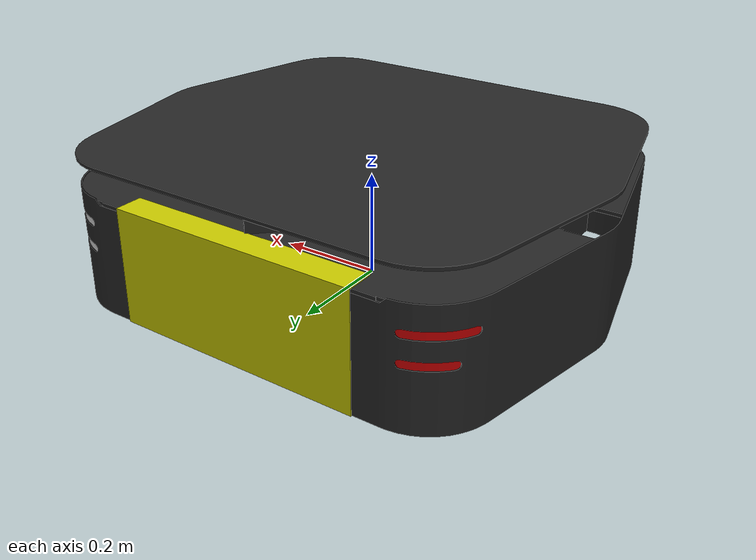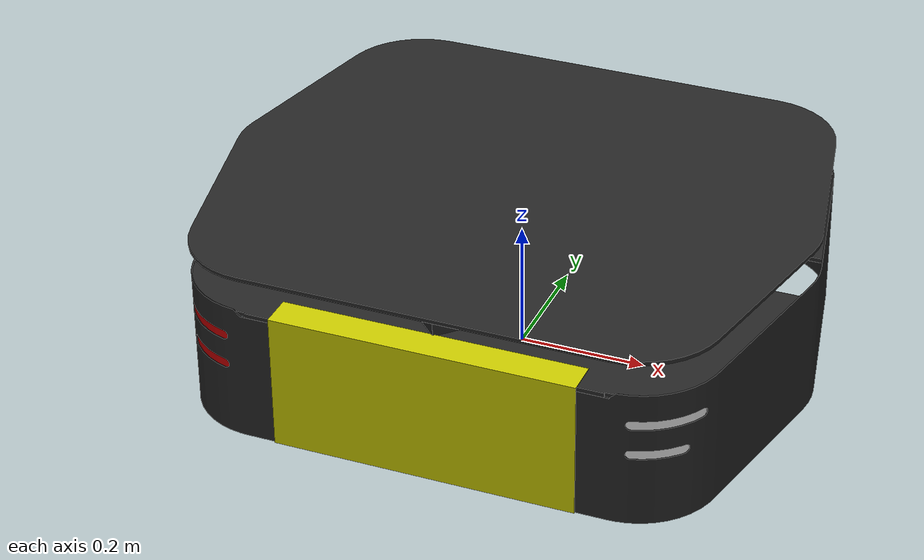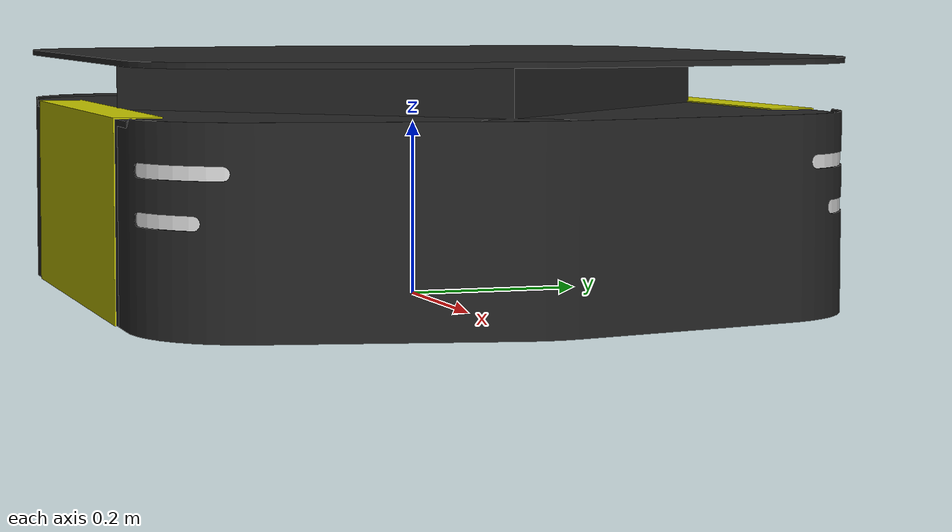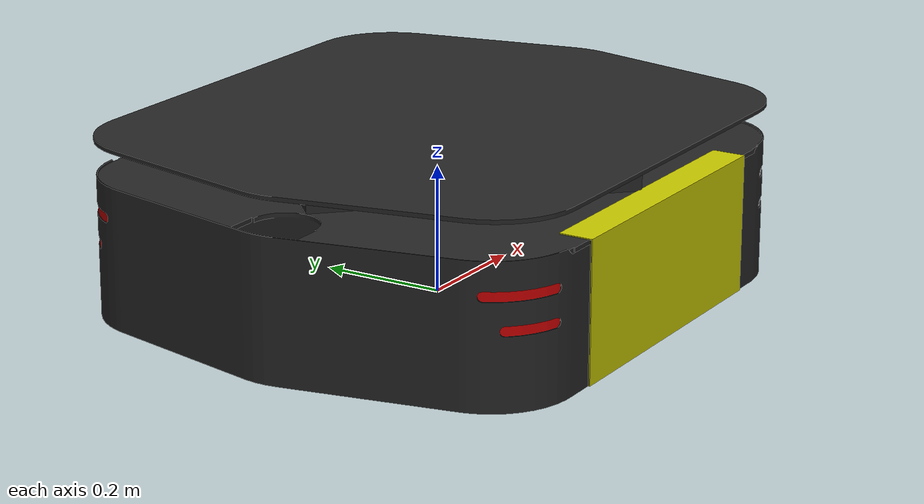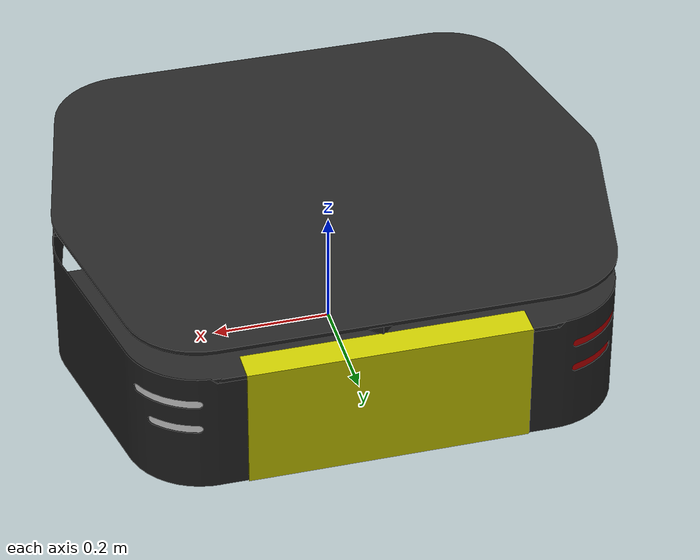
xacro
<?xml version="1.0"?>
<robot name="ridgeback" xmlns:xacro="http://ros.org/wiki/xacro">

    <xacro:property name="collision_format" value="obj"/>
    <xacro:property name="PI" value="3.1415926535897931" />

    <xacro:property name="wheel_radius" value="0.0759" />
    <xacro:property name="wheel_width" value="0.0790" />

    <xacro:property name="chassis_length" value="0.960" />
    <xacro:property name="chassis_width" value="0.793" />
    <xacro:property name="chassis_height" value="0.216" />
    <xacro:property name="deck_height" value="0.280" />
    <xacro:property name="axle_offset" value="0.0500" />

    <xacro:property name="dummy_inertia" value="1e-09"/>

    <xacro:property name="imu_offset_x" value="0.2085"/>
    <xacro:property name="imu_offset_y" value="-0.2902"/>
    <xacro:property name="imu_offset_z" value="0.1681"/>

    <material name="dark_grey"><color rgba="0.2 0.2 0.2 1.0" /></material>
    <material name="light_grey"><color rgba="0.4 0.4 0.4 1.0" /></material>
    <material name="red"><color rgba="0.8 0.0 0.0 1.0" /></material>
    <material name="white"><color rgba="0.9 0.9 0.9 1.0" /></material>
    <material name="yellow"><color rgba="0.8 0.8 0.0 1.0" /></material>
    <material name="black"><color rgba="0.15 0.15 0.15 1.0" /></material>

    <!--    Only base link contains the collision bodies-->
    <link name="base_link">
        <inertial>
            <origin rpy="0 0 0" xyz="0 0 0.25"/>
            <mass value="1.0"/>
            <inertia ixx="0.048966669" ixy="0" ixz="0" iyy="0.046466667" iyz="0" izz="0.0041666669"/>
        </inertial>
       <collision>
           <origin rpy="0 0 0" xyz="0 0 0.25"/>
           <geometry>
               <box size="0.95 0.90 0.5"/>
           </geometry>
       </collision>
       <collision>
           <origin rpy="0 0 0" xyz="-0.35 0 0.775"/>
           <geometry>
               <box size="0.20 0.90 0.55"/>
           </geometry>
       </collision>
    </link>

    <joint name="base_link_joint" type="fixed">
        <origin xyz="0 0 0" rpy="0 0 0" />
        <parent link="base_link"/>
        <child link="chassis_link" />
    </joint>

    <link name="chassis_link">
        <visual>
            <origin xyz="0 0 0" rpy="0 0 0" />
            <geometry>
                <mesh filename="ridgeback/meshes/body.${collision_format}"/>
            </geometry>
            <material name="black" />
        </visual>
        <inertial>
            <origin xyz="0.012 0.002 0.067" rpy="${PI/2} 0 ${PI/2}"/>
            <mass value="165.304"/>
            <inertia
                    ixx="4.4744" ixy="0.03098" ixz="0.003647"
                    iyy="7.1624" iyz="0.1228"
                    izz="4.6155"/>
        </inertial>
    </link>

    <joint name="right_side_cover_link_joint" type="fixed">
        <origin xyz="0 0 0" rpy="0 0 0" />
        <parent link="chassis_link"/>
        <child link="right_side_cover_link" />
    </joint>

    <joint name="left_side_cover_link_joint" type="fixed">
        <origin xyz="0 0 0" rpy="0 0 0" />
        <parent link="chassis_link"/>
        <child link="left_side_cover_link" />
    </joint>

    <link name="left_side_cover_link">
        <visual>
            <origin xyz="0 0 0" rpy="0 0 ${PI}" />
            <geometry>
                <mesh filename="ridgeback/meshes/side-cover.${collision_format}"/>
            </geometry>
            <material name="yellow" />
        </visual>
    </link>

    <link name="right_side_cover_link">
        <visual>
            <origin xyz="0 0 0" rpy="0 0 0" />
            <geometry>
                <mesh filename="ridgeback/meshes/side-cover.${collision_format}"/>
            </geometry>
            <material name="yellow" />
        </visual>
    </link>

    <joint name="front_cover_link_joint" type="fixed">
        <origin xyz="0 0 0" rpy="0 0 0" />
        <parent link="chassis_link"/>
        <child link="front_cover_link" />
    </joint>

    <link name="front_cover_link">
        <visual>
            <origin xyz="0 0 0" rpy="0 0 0" />
            <geometry>
                <mesh filename="ridgeback/meshes/end-cover.${collision_format}" />
            </geometry>
            <material name="black" />
        </visual>
    </link>

    <joint name="rear_cover_link_joint" type="fixed">
        <origin xyz="0 0 0" rpy="0 0 0" />
        <parent link="chassis_link"/>
        <child link="rear_cover_link" />
    </joint>

    <link name="rear_cover_link">
        <visual>
            <origin xyz="0 0 0" rpy="0 0 ${PI}" />
            <geometry>
                <mesh filename="ridgeback/meshes/end-cover.${collision_format}" />
            </geometry>
            <material name="black" />
        </visual>
    </link>

    <joint name="front_lights_link_joint" type="fixed">
        <origin xyz="0 0 0" rpy="0 0 0" />
        <parent link="chassis_link"/>
        <child link="front_lights_link" />
    </joint>

    <joint name="rear_lights_link_joint" type="fixed">
        <origin xyz="0 0 0" rpy="0 0 0" />
        <parent link="chassis_link"/>
        <child link="rear_lights_link" />
    </joint>

    <link name="front_lights_link">
        <visual>
            <origin xyz="0 0 0" rpy="0 0 0" />
            <geometry>
                <mesh filename="ridgeback/meshes/lights.${collision_format}" />
            </geometry>
            <material name="white" />
        </visual>
    </link>

    <link name="rear_lights_link">
        <visual>
            <origin xyz="0 0 0" rpy="0 0 ${PI}" />
            <geometry>
                <mesh filename="ridgeback/meshes/lights.${collision_format}" />
            </geometry>
            <material name="red" />
        </visual>
    </link>

    <joint name="top_link_joint" type="fixed">
        <origin xyz="0 0 0" rpy="0 0 0" />
        <parent link="chassis_link"/>
        <child link="top_link" />
    </joint>

    <link name="top_link">
        <visual>
            <origin xyz="0 0 0" rpy="0 0 0" />
            <geometry>
                <mesh filename="ridgeback/meshes/top.${collision_format}" />
            </geometry>
            <material name="black" />
        </visual>
    </link>

    <joint name="axle_joint" type="fixed">
        <origin xyz="0 0 ${axle_offset}" rpy="0 0 0" />
        <parent link="chassis_link"/>
        <child link="axle_link" />
    </joint>

    <link name="axle_link">
        <visual>
            <origin xyz="0 0 0" rpy="0 ${PI/2} 0" />
            <geometry>
                <mesh filename="ridgeback/meshes/axle.${collision_format}" />
            </geometry>
            <material name="black" />
        </visual>
    </link>

    <link name="imu_link">
        <inertial>
            <mass value="0.001"/>
            <origin xyz="0 0 0" rpy="0 0 0"/>
            <inertia ixx="${dummy_inertia}" ixy="0.0" ixz="0.0" iyy="${dummy_inertia}" iyz="0.0" izz="${dummy_inertia}"/>
        </inertial>
    </link>

    <joint name="imu_joint" type="fixed">
        <parent link="chassis_link" />
        <child link="imu_link" />
        <origin xyz="${imu_offset_x} ${imu_offset_y} ${imu_offset_z}" rpy="0 0 0"/>
    </joint>

    <link name="mid_mount" />

    <joint name="mid_mount_joint" type="fixed">
        <parent link="base_link" />
        <child link="mid_mount" />
        <origin xyz="0 0 ${deck_height}" rpy="0 0 0"/>
    </joint>
</robot>
